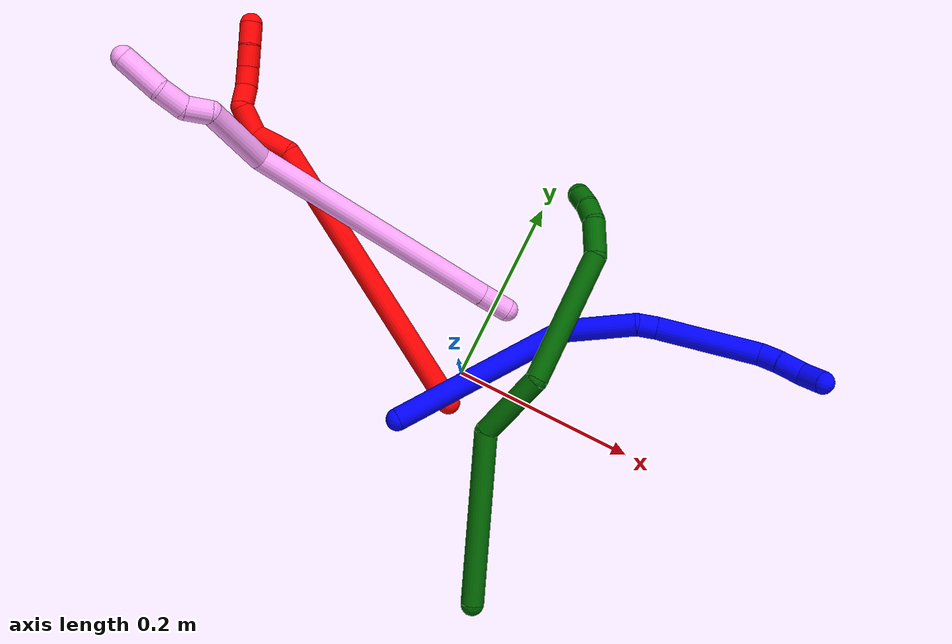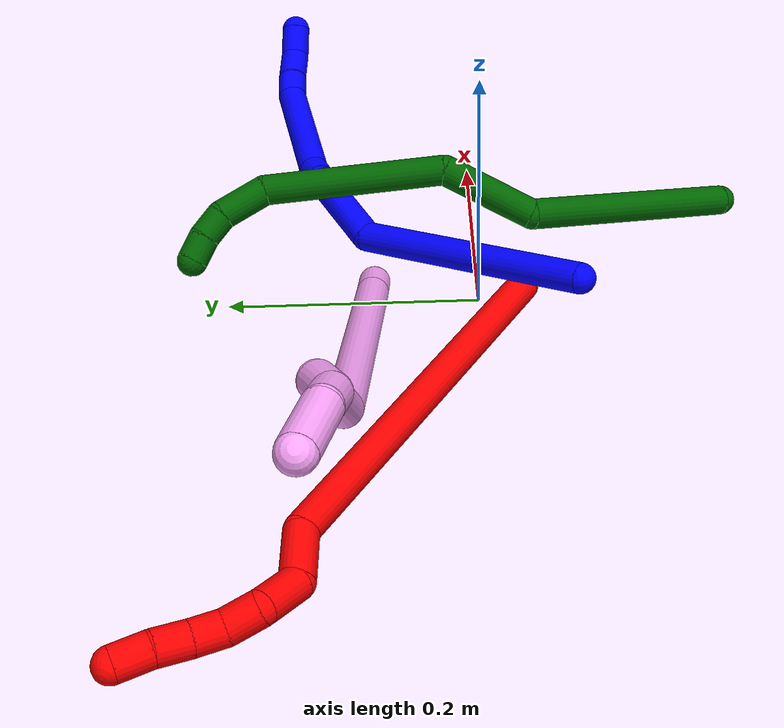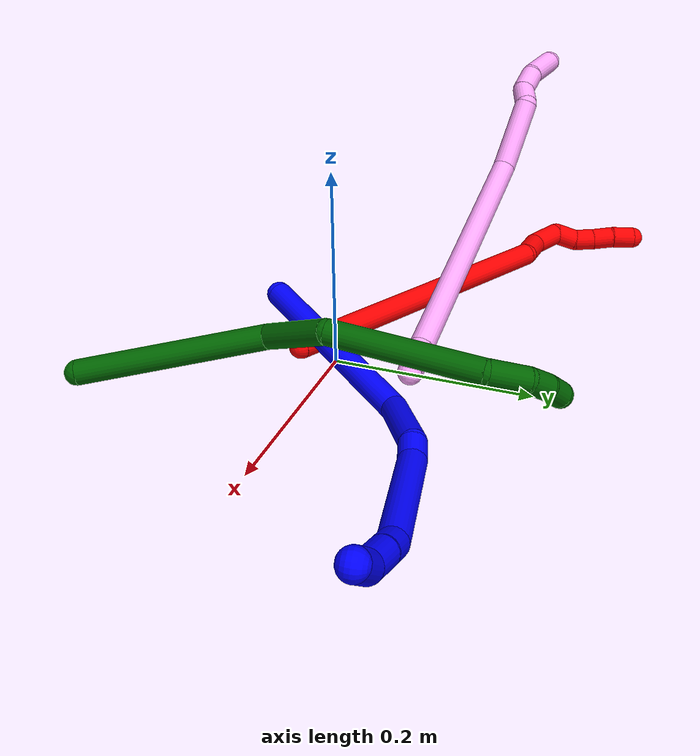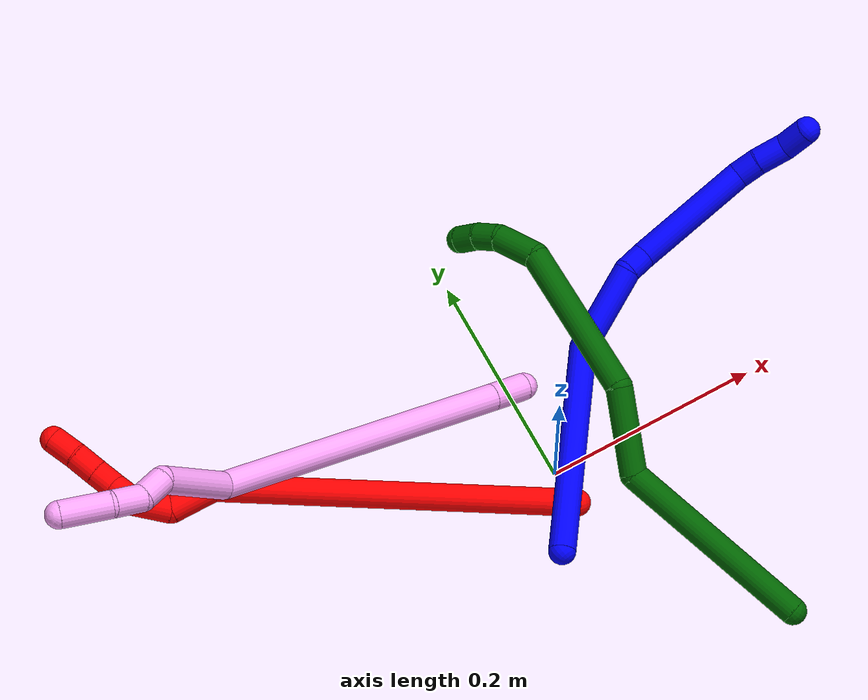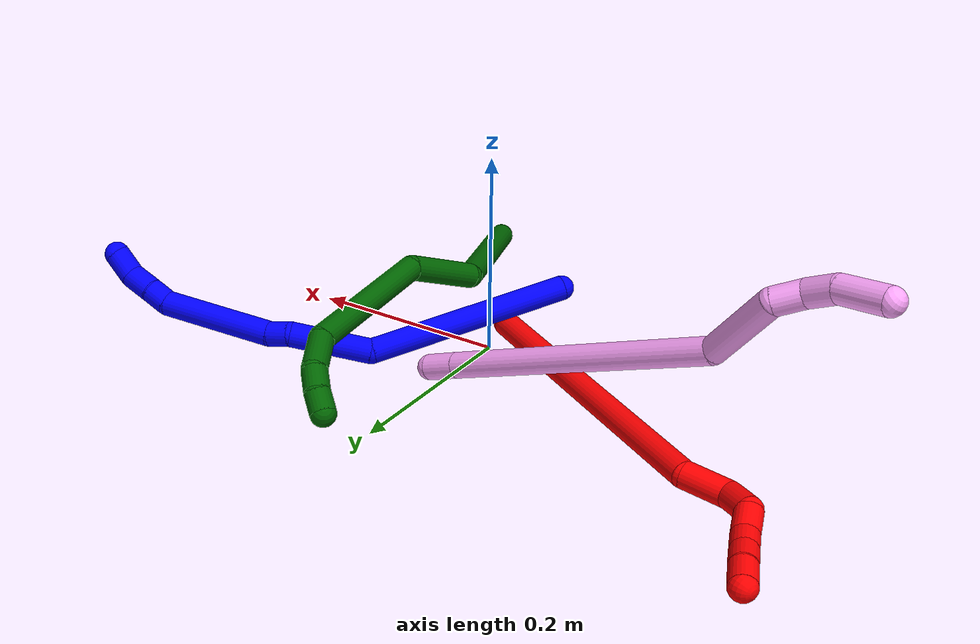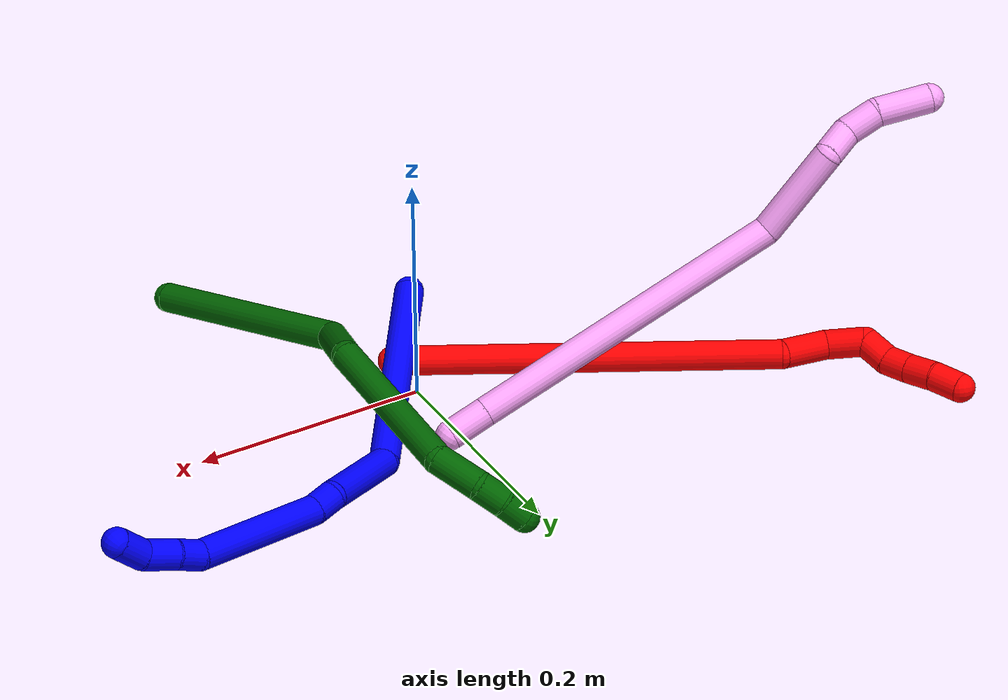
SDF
<sdf version="1.7">
 <world name="default">
  <model name="photoneo_s_sensor">
   <static>1</static>
   <pose>0 0 2 1.57079 1.57079 3.14159</pose>
   <link name="link">
    <inertial><mass>0.1</mass></inertial>
    <sensor name="sensor" type="depth">
     <update_rate>30</update_rate>
     <camera>
      <horizontal_fov>1.22</horizontal_fov>
      <image><width>1920</width><height>1200</height><format>B8G8R8</format></image>
      <clip><near>0.1</near><far>4</far></clip>
      <depth_camera><output>points</output></depth_camera>
     </camera>
     <plugin name="camera_plugin" filename="libgazebo_ros_depth_camera.so">
      <baseline>0.2</baseline>
      <alwaysOn>1</alwaysOn>
      <updateRate>0.0</updateRate>
      <cameraName>camera_ir</cameraName>
      <imageTopicName>/camera/color/image_raw</imageTopicName>
      <cameraInfoTopicName>/camera/color/camera_info</cameraInfoTopicName>
      <depthImageTopicName>/camera/depth/image_raw</depthImageTopicName>
      <depthImageCameraInfoTopicName>/camera/depth/camera_info</depthImageCameraInfoTopicName>
      <pointCloudTopicName>/camera/depth/points</pointCloudTopicName>
      <frameName>fr_optical</frameName>
      <pointCloudCutoff>0.1</pointCloudCutoff>
      <pointCloudCutoffMax>2.0</pointCloudCutoffMax>
      <distortionK1>0</distortionK1>
      <distortionK2>0</distortionK2>
      <distortionK3>0</distortionK3>
      <distortionT1>0</distortionT1>
      <distortionT2>0</distortionT2>
      <CxPrime>0</CxPrime>
      <Cx>0</Cx>
      <Cy>0</Cy>
      <focalLength>0</focalLength>
      <hackBaseline>0</hackBaseline>
     </plugin>
    </sensor>
   </link>
  </model>
  <model name="bin">
   <static>1</static>
   <link name="bottom">
    <collision name="collision-bottom">
     <pose>0 0 -0.01 0 -0 0</pose>
     <geometry><box><size>0.8 0.6 0.02</size></box></geometry>
     <surface>
      <friction><ode><mu>100</mu><mu2>100</mu2></ode></friction>
      <contact><collide_bitmask>65535</collide_bitmask></contact>
     </surface>
    </collision>
   </link>
   <link name="west_wall">
    <collision name="collision-west_wall">
     <pose>-0.41 0 0.1 0 -0 0</pose>
     <geometry><box><size>0.02 0.6 0.2</size></box></geometry>
     <surface>
      <friction><ode><mu>100</mu><mu2>100</mu2></ode></friction>
      <contact><collide_bitmask>65535</collide_bitmask></contact>
     </surface>
    </collision>
   </link>
   <link name="east_wall">
    <collision name="collision-east_wall">
     <pose>0.41 0 0.1 0 -0 0</pose>
     <geometry><box><size>0.02 0.6 0.2</size></box></geometry>
     <surface>
      <friction><ode><mu>100</mu><mu2>100</mu2></ode></friction>
      <contact><collide_bitmask>65535</collide_bitmask></contact>
     </surface>
    </collision>
   </link>
   <link name="south_wall">
    <collision name="collision-south_wall">
     <pose>0 -0.31 0.1 0 -0 0</pose>
     <geometry><box><size>0.8 0.02 0.2</size></box></geometry>
     <surface>
      <friction><ode><mu>100</mu><mu2>100</mu2></ode></friction>
      <contact><collide_bitmask>65535</collide_bitmask></contact>
     </surface>
    </collision>
   </link>
   <link name="north_wall">
    <collision name="collision-north_wall">
     <pose>0 0.31 0.1 0 -0 0</pose>
     <geometry><box><size>0.8 0.02 0.2</size></box></geometry>
     <surface>
      <friction><ode><mu>100</mu><mu2>100</mu2></ode></friction>
      <contact><collide_bitmask>65535</collide_bitmask></contact>
     </surface>
    </collision>
   </link>
  </model>
  <model name="1">
   <static>0</static>
   <link name="1">
    <collision name="collision-cylinder-e_1_1_4">
     <pose>0.038962 0.059178 0.074381 -0.672057 0.389018 -0.137397</pose>
     <geometry><cylinder><radius>0.0125</radius><length>0.205451</length></cylinder></geometry>
     <surface>
      <friction><ode><mu>1.16</mu><mu2>1.16</mu2><slip1>0</slip1><slip2>0</slip2></ode></friction>
      <contact><ode><kp>1e+06</kp><kd>1</kd><max_vel>0</max_vel><min_depth>0.001</min_depth></ode></contact>
     </surface>
    </collision>
    <visual name="visual-cylinder-e_1_1_4">
     <pose>0.038962 0.059178 0.074381 -0.672057 0.389018 -0.137397</pose>
     <geometry><cylinder><radius>0.0125</radius><length>0.205451</length></cylinder></geometry>
     <material><ambient>0 0 1 1</ambient></material>
    </visual>
    <collision name="collision-cylinder-e_2_4_5">
     <pose>0.109553 0.138882 0.162872 -0.968546 0.903713 -0.499956</pose>
     <geometry><cylinder><radius>0.0125</radius><length>0.080519</length></cylinder></geometry>
     <surface>
      <friction><ode><mu>1.16</mu><mu2>1.16</mu2><slip1>0</slip1><slip2>0</slip2></ode></friction>
      <contact><ode><kp>1e+06</kp><kd>1</kd><max_vel>0</max_vel><min_depth>0.001</min_depth></ode></contact>
     </surface>
    </collision>
    <visual name="visual-cylinder-e_2_4_5">
     <pose>0.109553 0.138882 0.162872 -0.968546 0.903713 -0.499956</pose>
     <geometry><cylinder><radius>0.0125</radius><length>0.080519</length></cylinder></geometry>
     <material><ambient>0 0 1 1</ambient></material>
    </visual>
    <collision name="collision-cylinder-e_3_5_6">
     <pose>0.147479 0.168151 0.178678 -1.3793 0.615481 -0.512738</pose>
     <geometry><cylinder><radius>0.0125</radius><length>0.021815</length></cylinder></geometry>
     <surface>
      <friction><ode><mu>1.16</mu><mu2>1.16</mu2><slip1>0</slip1><slip2>0</slip2></ode></friction>
      <contact><ode><kp>1e+06</kp><kd>1</kd><max_vel>0</max_vel><min_depth>0.001</min_depth></ode></contact>
     </surface>
    </collision>
    <visual name="visual-cylinder-e_3_5_6">
     <pose>0.147479 0.168151 0.178678 -1.3793 0.615481 -0.512738</pose>
     <geometry><cylinder><radius>0.0125</radius><length>0.021815</length></cylinder></geometry>
     <material><ambient>0 0 1 1</ambient></material>
    </visual>
    <collision name="collision-cylinder-e_4_6_7">
     <pose>0.197058 0.214206 0.182724 -1.50786 0.858362 -0.811685</pose>
     <geometry><cylinder><radius>0.0125</radius><length>0.114384</length></cylinder></geometry>
     <surface>
      <friction><ode><mu>1.16</mu><mu2>1.16</mu2><slip1>0</slip1><slip2>0</slip2></ode></friction>
      <contact><ode><kp>1e+06</kp><kd>1</kd><max_vel>0</max_vel><min_depth>0.001</min_depth></ode></contact>
     </surface>
    </collision>
    <visual name="visual-cylinder-e_4_6_7">
     <pose>0.197058 0.214206 0.182724 -1.50786 0.858362 -0.811685</pose>
     <geometry><cylinder><radius>0.0125</radius><length>0.114384</length></cylinder></geometry>
     <material><ambient>0 0 1 1</ambient></material>
    </visual>
    <collision name="collision-cylinder-e_5_7_8">
     <pose>0.250347 0.256003 0.183392 -1.92976 1.12424 -1.47569</pose>
     <geometry><cylinder><radius>0.0125</radius><length>0.022191</length></cylinder></geometry>
     <surface>
      <friction><ode><mu>1.16</mu><mu2>1.16</mu2><slip1>0</slip1><slip2>0</slip2></ode></friction>
      <contact><ode><kp>1e+06</kp><kd>1</kd><max_vel>0</max_vel><min_depth>0.001</min_depth></ode></contact>
     </surface>
    </collision>
    <visual name="visual-cylinder-e_5_7_8">
     <pose>0.250347 0.256003 0.183392 -1.92976 1.12424 -1.47569</pose>
     <geometry><cylinder><radius>0.0125</radius><length>0.022191</length></cylinder></geometry>
     <material><ambient>0 0 1 1</ambient></material>
    </visual>
    <collision name="collision-cylinder-e_6_8_9">
     <pose>0.272377 0.267362 0.178492 -2.00856 1.00777 -1.42837</pose>
     <geometry><cylinder><radius>0.0125</radius><length>0.028435</length></cylinder></geometry>
     <surface>
      <friction><ode><mu>1.16</mu><mu2>1.16</mu2><slip1>0</slip1><slip2>0</slip2></ode></friction>
      <contact><ode><kp>1e+06</kp><kd>1</kd><max_vel>0</max_vel><min_depth>0.001</min_depth></ode></contact>
     </surface>
    </collision>
    <visual name="visual-cylinder-e_6_8_9">
     <pose>0.272377 0.267362 0.178492 -2.00856 1.00777 -1.42837</pose>
     <geometry><cylinder><radius>0.0125</radius><length>0.028435</length></cylinder></geometry>
     <material><ambient>0 0 1 1</ambient></material>
    </visual>
    <collision name="collision-cylinder-e_7_9_2">
     <pose>0.297696 0.275284 0.172603 -2.7674 1.35818 -2.68084</pose>
     <geometry><cylinder><radius>0.0125</radius><length>0.027205</length></cylinder></geometry>
     <surface>
      <friction><ode><mu>1.16</mu><mu2>1.16</mu2><slip1>0</slip1><slip2>0</slip2></ode></friction>
      <contact><ode><kp>1e+06</kp><kd>1</kd><max_vel>0</max_vel><min_depth>0.001</min_depth></ode></contact>
     </surface>
    </collision>
    <visual name="visual-cylinder-e_7_9_2">
     <pose>0.297696 0.275284 0.172603 -2.7674 1.35818 -2.68084</pose>
     <geometry><cylinder><radius>0.0125</radius><length>0.027205</length></cylinder></geometry>
     <material><ambient>0 0 1 1</ambient></material>
    </visual>
    <collision name="collision-sphere-2">
     <pose>0.310992 0.276334 0.169932 0 -0 0</pose>
     <geometry><sphere><radius>0.0125</radius></sphere></geometry>
     <surface>
      <friction><ode><mu>1.16</mu><mu2>1.16</mu2><slip1>0</slip1><slip2>0</slip2></ode></friction>
      <contact><ode><kp>1e+06</kp><kd>1</kd><max_vel>0</max_vel><min_depth>0.001</min_depth></ode></contact>
     </surface>
    </collision>
    <visual name="visual-sphere-2">
     <pose>0.310992 0.276334 0.169932 0 -0 0</pose>
     <geometry><sphere><radius>0.0125</radius></sphere></geometry>
     <material><ambient>0 0 1 1</ambient></material>
    </visual>
    <collision name="collision-sphere-9">
     <pose>0.2844 0.274235 0.175275 0 -0 0</pose>
     <geometry><sphere><radius>0.0125</radius></sphere></geometry>
     <surface>
      <friction><ode><mu>1.16</mu><mu2>1.16</mu2><slip1>0</slip1><slip2>0</slip2></ode></friction>
      <contact><ode><kp>1e+06</kp><kd>1</kd><max_vel>0</max_vel><min_depth>0.001</min_depth></ode></contact>
     </surface>
    </collision>
    <visual name="visual-sphere-9">
     <pose>0.2844 0.274235 0.175275 0 -0 0</pose>
     <geometry><sphere><radius>0.0125</radius></sphere></geometry>
     <material><ambient>0 0 1 1</ambient></material>
    </visual>
    <collision name="collision-sphere-4">
     <pose>0.077923 0.118356 0.148761 0 -0 0</pose>
     <geometry><sphere><radius>0.0125</radius></sphere></geometry>
     <surface>
      <friction><ode><mu>1.16</mu><mu2>1.16</mu2><slip1>0</slip1><slip2>0</slip2></ode></friction>
      <contact><ode><kp>1e+06</kp><kd>1</kd><max_vel>0</max_vel><min_depth>0.001</min_depth></ode></contact>
     </surface>
    </collision>
    <visual name="visual-sphere-4">
     <pose>0.077923 0.118356 0.148761 0 -0 0</pose>
     <geometry><sphere><radius>0.0125</radius></sphere></geometry>
     <material><ambient>0 0 1 1</ambient></material>
    </visual>
    <collision name="collision-sphere-1">
     <geometry><sphere><radius>0.0125</radius></sphere></geometry>
     <surface>
      <friction><ode><mu>1.16</mu><mu2>1.16</mu2><slip1>0</slip1><slip2>0</slip2></ode></friction>
      <contact><ode><kp>1e+06</kp><kd>1</kd><max_vel>0</max_vel><min_depth>0.001</min_depth></ode></contact>
     </surface>
    </collision>
    <visual name="visual-sphere-1">
     <geometry><sphere><radius>0.0125</radius></sphere></geometry>
     <material><ambient>0 0 1 1</ambient></material>
    </visual>
    <collision name="collision-sphere-8">
     <pose>0.260355 0.260489 0.181709 0 -0 0</pose>
     <geometry><sphere><radius>0.0125</radius></sphere></geometry>
     <surface>
      <friction><ode><mu>1.16</mu><mu2>1.16</mu2><slip1>0</slip1><slip2>0</slip2></ode></friction>
      <contact><ode><kp>1e+06</kp><kd>1</kd><max_vel>0</max_vel><min_depth>0.001</min_depth></ode></contact>
     </surface>
    </collision>
    <visual name="visual-sphere-8">
     <pose>0.260355 0.260489 0.181709 0 -0 0</pose>
     <geometry><sphere><radius>0.0125</radius></sphere></geometry>
     <material><ambient>0 0 1 1</ambient></material>
    </visual>
    <collision name="collision-sphere-5">
     <pose>0.141182 0.159408 0.176983 0 -0 0</pose>
     <geometry><sphere><radius>0.0125</radius></sphere></geometry>
     <surface>
      <friction><ode><mu>1.16</mu><mu2>1.16</mu2><slip1>0</slip1><slip2>0</slip2></ode></friction>
      <contact><ode><kp>1e+06</kp><kd>1</kd><max_vel>0</max_vel><min_depth>0.001</min_depth></ode></contact>
     </surface>
    </collision>
    <visual name="visual-sphere-5">
     <pose>0.141182 0.159408 0.176983 0 -0 0</pose>
     <geometry><sphere><radius>0.0125</radius></sphere></geometry>
     <material><ambient>0 0 1 1</ambient></material>
    </visual>
    <collision name="collision-sphere-6">
     <pose>0.153777 0.176895 0.180373 0 -0 0</pose>
     <geometry><sphere><radius>0.0125</radius></sphere></geometry>
     <surface>
      <friction><ode><mu>1.16</mu><mu2>1.16</mu2><slip1>0</slip1><slip2>0</slip2></ode></friction>
      <contact><ode><kp>1e+06</kp><kd>1</kd><max_vel>0</max_vel><min_depth>0.001</min_depth></ode></contact>
     </surface>
    </collision>
    <visual name="visual-sphere-6">
     <pose>0.153777 0.176895 0.180373 0 -0 0</pose>
     <geometry><sphere><radius>0.0125</radius></sphere></geometry>
     <material><ambient>0 0 1 1</ambient></material>
    </visual>
    <collision name="collision-sphere-7">
     <pose>0.240339 0.251517 0.185076 0 -0 0</pose>
     <geometry><sphere><radius>0.0125</radius></sphere></geometry>
     <surface>
      <friction><ode><mu>1.16</mu><mu2>1.16</mu2><slip1>0</slip1><slip2>0</slip2></ode></friction>
      <contact><ode><kp>1e+06</kp><kd>1</kd><max_vel>0</max_vel><min_depth>0.001</min_depth></ode></contact>
     </surface>
    </collision>
    <visual name="visual-sphere-7">
     <pose>0.240339 0.251517 0.185076 0 -0 0</pose>
     <geometry><sphere><radius>0.0125</radius></sphere></geometry>
     <material><ambient>0 0 1 1</ambient></material>
    </visual>
    <inertial>
     <pose>0.127965 0.144566 0.13407 0 -0 0</pose>
     <mass>0.5</mass>
     <inertia>
      <ixx>0.000607</ixx>
      <ixy>0</ixy>
      <ixz>0</ixz>
      <iyy>0.000562</iyy>
      <iyz>0</iyz>
      <izz>-0.000939</izz>
     </inertia>
    </inertial>
   </link>
   <pose>-0.0364 -0.077038 0.04496 -1.66129 -0.817332 0.21813</pose>
  </model>
  <model name="2">
   <static>0</static>
   <link name="2">
    <collision name="collision-cylinder-e_1_1_4">
     <pose>-0.022821 0.021688 0.159924 -0.134793 -0.140474 0.009497</pose>
     <geometry><cylinder><radius>0.0125</radius><length>0.325986</length></cylinder></geometry>
     <surface>
      <friction><ode><mu>1.16</mu><mu2>1.16</mu2><slip1>0</slip1><slip2>0</slip2></ode></friction>
      <contact><ode><kp>1e+06</kp><kd>1</kd><max_vel>0</max_vel><min_depth>0.001</min_depth></ode></contact>
     </surface>
    </collision>
    <visual name="visual-cylinder-e_1_1_4">
     <pose>-0.022821 0.021688 0.159924 -0.134793 -0.140474 0.009497</pose>
     <geometry><cylinder><radius>0.0125</radius><length>0.325986</length></cylinder></geometry>
     <material><ambient>1 0 0 1</ambient></material>
    </visual>
    <collision name="collision-cylinder-e_2_4_5">
     <pose>-0.042325 0.037241 0.340003 0.295457 0.156167 0.023286</pose>
     <geometry><cylinder><radius>0.0125</radius><length>0.042657</length></cylinder></geometry>
     <surface>
      <friction><ode><mu>1.16</mu><mu2>1.16</mu2><slip1>0</slip1><slip2>0</slip2></ode></friction>
      <contact><ode><kp>1e+06</kp><kd>1</kd><max_vel>0</max_vel><min_depth>0.001</min_depth></ode></contact>
     </surface>
    </collision>
    <visual name="visual-cylinder-e_2_4_5">
     <pose>-0.042325 0.037241 0.340003 0.295457 0.156167 0.023286</pose>
     <geometry><cylinder><radius>0.0125</radius><length>0.042657</length></cylinder></geometry>
     <material><ambient>1 0 0 1</ambient></material>
    </visual>
    <collision name="collision-cylinder-e_3_5_6">
     <pose>-0.041144 0.0367 0.376159 -0.336333 -0.125382 0.021313</pose>
     <geometry><cylinder><radius>0.0125</radius><length>0.034168</length></cylinder></geometry>
     <surface>
      <friction><ode><mu>1.16</mu><mu2>1.16</mu2><slip1>0</slip1><slip2>0</slip2></ode></friction>
      <contact><ode><kp>1e+06</kp><kd>1</kd><max_vel>0</max_vel><min_depth>0.001</min_depth></ode></contact>
     </surface>
    </collision>
    <visual name="visual-cylinder-e_3_5_6">
     <pose>-0.041144 0.0367 0.376159 -0.336333 -0.125382 0.021313</pose>
     <geometry><cylinder><radius>0.0125</radius><length>0.034168</length></cylinder></geometry>
     <material><ambient>1 0 0 1</ambient></material>
    </visual>
    <collision name="collision-cylinder-e_4_6_7">
     <pose>-0.053106 0.045101 0.399405 -0.369561 -0.901663 0.18047</pose>
     <geometry><cylinder><radius>0.0125</radius><length>0.025054</length></cylinder></geometry>
     <surface>
      <friction><ode><mu>1.16</mu><mu2>1.16</mu2><slip1>0</slip1><slip2>0</slip2></ode></friction>
      <contact><ode><kp>1e+06</kp><kd>1</kd><max_vel>0</max_vel><min_depth>0.001</min_depth></ode></contact>
     </surface>
    </collision>
    <visual name="visual-cylinder-e_4_6_7">
     <pose>-0.053106 0.045101 0.399405 -0.369561 -0.901663 0.18047</pose>
     <geometry><cylinder><radius>0.0125</radius><length>0.025054</length></cylinder></geometry>
     <material><ambient>1 0 0 1</ambient></material>
    </visual>
    <collision name="collision-cylinder-e_5_7_8">
     <pose>-0.069153 0.053515 0.414184 -0.63983 -0.58514 0.198923</pose>
     <geometry><cylinder><radius>0.0125</radius><length>0.02253</length></cylinder></geometry>
     <surface>
      <friction><ode><mu>1.16</mu><mu2>1.16</mu2><slip1>0</slip1><slip2>0</slip2></ode></friction>
      <contact><ode><kp>1e+06</kp><kd>1</kd><max_vel>0</max_vel><min_depth>0.001</min_depth></ode></contact>
     </surface>
    </collision>
    <visual name="visual-cylinder-e_5_7_8">
     <pose>-0.069153 0.053515 0.414184 -0.63983 -0.58514 0.198923</pose>
     <geometry><cylinder><radius>0.0125</radius><length>0.02253</length></cylinder></geometry>
     <material><ambient>1 0 0 1</ambient></material>
    </visual>
    <collision name="collision-cylinder-e_6_8_9">
     <pose>-0.081408 0.065794 0.429798 -0.690268 -0.522332 0.191592</pose>
     <geometry><cylinder><radius>0.0125</radius><length>0.024183</length></cylinder></geometry>
     <surface>
      <friction><ode><mu>1.16</mu><mu2>1.16</mu2><slip1>0</slip1><slip2>0</slip2></ode></friction>
      <contact><ode><kp>1e+06</kp><kd>1</kd><max_vel>0</max_vel><min_depth>0.001</min_depth></ode></contact>
     </surface>
    </collision>
    <visual name="visual-cylinder-e_6_8_9">
     <pose>-0.081408 0.065794 0.429798 -0.690268 -0.522332 0.191592</pose>
     <geometry><cylinder><radius>0.0125</radius><length>0.024183</length></cylinder></geometry>
     <material><ambient>1 0 0 1</ambient></material>
    </visual>
    <collision name="collision-cylinder-e_7_9_2">
     <pose>-0.094875 0.077933 0.44662 -0.558814 -0.624763 0.184792</pose>
     <geometry><cylinder><radius>0.0125</radius><length>0.025423</length></cylinder></geometry>
     <surface>
      <friction><ode><mu>1.16</mu><mu2>1.16</mu2><slip1>0</slip1><slip2>0</slip2></ode></friction>
      <contact><ode><kp>1e+06</kp><kd>1</kd><max_vel>0</max_vel><min_depth>0.001</min_depth></ode></contact>
     </surface>
    </collision>
    <visual name="visual-cylinder-e_7_9_2">
     <pose>-0.094875 0.077933 0.44662 -0.558814 -0.624763 0.184792</pose>
     <geometry><cylinder><radius>0.0125</radius><length>0.025423</length></cylinder></geometry>
     <material><ambient>1 0 0 1</ambient></material>
    </visual>
    <collision name="collision-sphere-2">
     <pose>-0.10231 0.083399 0.455362 0 -0 0</pose>
     <geometry><sphere><radius>0.0125</radius></sphere></geometry>
     <surface>
      <friction><ode><mu>1.16</mu><mu2>1.16</mu2><slip1>0</slip1><slip2>0</slip2></ode></friction>
      <contact><ode><kp>1e+06</kp><kd>1</kd><max_vel>0</max_vel><min_depth>0.001</min_depth></ode></contact>
     </surface>
    </collision>
    <visual name="visual-sphere-2">
     <pose>-0.10231 0.083399 0.455362 0 -0 0</pose>
     <geometry><sphere><radius>0.0125</radius></sphere></geometry>
     <material><ambient>1 0 0 1</ambient></material>
    </visual>
    <collision name="collision-sphere-9">
     <pose>-0.08744 0.072467 0.437878 0 -0 0</pose>
     <geometry><sphere><radius>0.0125</radius></sphere></geometry>
     <surface>
      <friction><ode><mu>1.16</mu><mu2>1.16</mu2><slip1>0</slip1><slip2>0</slip2></ode></friction>
      <contact><ode><kp>1e+06</kp><kd>1</kd><max_vel>0</max_vel><min_depth>0.001</min_depth></ode></contact>
     </surface>
    </collision>
    <visual name="visual-sphere-9">
     <pose>-0.08744 0.072467 0.437878 0 -0 0</pose>
     <geometry><sphere><radius>0.0125</radius></sphere></geometry>
     <material><ambient>1 0 0 1</ambient></material>
    </visual>
    <collision name="collision-sphere-4">
     <pose>-0.045642 0.043376 0.319847 0 -0 0</pose>
     <geometry><sphere><radius>0.0125</radius></sphere></geometry>
     <surface>
      <friction><ode><mu>1.16</mu><mu2>1.16</mu2><slip1>0</slip1><slip2>0</slip2></ode></friction>
      <contact><ode><kp>1e+06</kp><kd>1</kd><max_vel>0</max_vel><min_depth>0.001</min_depth></ode></contact>
     </surface>
    </collision>
    <visual name="visual-sphere-4">
     <pose>-0.045642 0.043376 0.319847 0 -0 0</pose>
     <geometry><sphere><radius>0.0125</radius></sphere></geometry>
     <material><ambient>1 0 0 1</ambient></material>
    </visual>
    <collision name="collision-sphere-1">
     <geometry><sphere><radius>0.0125</radius></sphere></geometry>
     <surface>
      <friction><ode><mu>1.16</mu><mu2>1.16</mu2><slip1>0</slip1><slip2>0</slip2></ode></friction>
      <contact><ode><kp>1e+06</kp><kd>1</kd><max_vel>0</max_vel><min_depth>0.001</min_depth></ode></contact>
     </surface>
    </collision>
    <visual name="visual-sphere-1">
     <geometry><sphere><radius>0.0125</radius></sphere></geometry>
     <material><ambient>1 0 0 1</ambient></material>
    </visual>
    <collision name="collision-sphere-8">
     <pose>-0.075375 0.059121 0.421718 0 -0 0</pose>
     <geometry><sphere><radius>0.0125</radius></sphere></geometry>
     <surface>
      <friction><ode><mu>1.16</mu><mu2>1.16</mu2><slip1>0</slip1><slip2>0</slip2></ode></friction>
      <contact><ode><kp>1e+06</kp><kd>1</kd><max_vel>0</max_vel><min_depth>0.001</min_depth></ode></contact>
     </surface>
    </collision>
    <visual name="visual-sphere-8">
     <pose>-0.075375 0.059121 0.421718 0 -0 0</pose>
     <geometry><sphere><radius>0.0125</radius></sphere></geometry>
     <material><ambient>1 0 0 1</ambient></material>
    </visual>
    <collision name="collision-sphere-5">
     <pose>-0.039008 0.031106 0.360159 0 -0 0</pose>
     <geometry><sphere><radius>0.0125</radius></sphere></geometry>
     <surface>
      <friction><ode><mu>1.16</mu><mu2>1.16</mu2><slip1>0</slip1><slip2>0</slip2></ode></friction>
      <contact><ode><kp>1e+06</kp><kd>1</kd><max_vel>0</max_vel><min_depth>0.001</min_depth></ode></contact>
     </surface>
    </collision>
    <visual name="visual-sphere-5">
     <pose>-0.039008 0.031106 0.360159 0 -0 0</pose>
     <geometry><sphere><radius>0.0125</radius></sphere></geometry>
     <material><ambient>1 0 0 1</ambient></material>
    </visual>
    <collision name="collision-sphere-6">
     <pose>-0.04328 0.042294 0.392159 0 -0 0</pose>
     <geometry><sphere><radius>0.0125</radius></sphere></geometry>
     <surface>
      <friction><ode><mu>1.16</mu><mu2>1.16</mu2><slip1>0</slip1><slip2>0</slip2></ode></friction>
      <contact><ode><kp>1e+06</kp><kd>1</kd><max_vel>0</max_vel><min_depth>0.001</min_depth></ode></contact>
     </surface>
    </collision>
    <visual name="visual-sphere-6">
     <pose>-0.04328 0.042294 0.392159 0 -0 0</pose>
     <geometry><sphere><radius>0.0125</radius></sphere></geometry>
     <material><ambient>1 0 0 1</ambient></material>
    </visual>
    <collision name="collision-sphere-7">
     <pose>-0.062932 0.047908 0.406651 0 -0 0</pose>
     <geometry><sphere><radius>0.0125</radius></sphere></geometry>
     <surface>
      <friction><ode><mu>1.16</mu><mu2>1.16</mu2><slip1>0</slip1><slip2>0</slip2></ode></friction>
      <contact><ode><kp>1e+06</kp><kd>1</kd><max_vel>0</max_vel><min_depth>0.001</min_depth></ode></contact>
     </surface>
    </collision>
    <visual name="visual-sphere-7">
     <pose>-0.062932 0.047908 0.406651 0 -0 0</pose>
     <geometry><sphere><radius>0.0125</radius></sphere></geometry>
     <material><ambient>1 0 0 1</ambient></material>
    </visual>
    <inertial>
     <pose>-0.035839 0.031641 0.24115 0 -0 0</pose>
     <mass>0.5</mass>
     <inertia>
      <ixx>0.002911</ixx>
      <ixy>0</ixy>
      <ixz>0</ixz>
      <iyy>0.002929</iyy>
      <iyz>0</iyz>
      <izz>5.7e-05</izz>
     </inertia>
    </inertial>
   </link>
   <pose>0.002777 -0.035945 0.011422 1.54952 -0.720383 -1.90018</pose>
  </model>
  <model name="4">
   <static>0</static>
   <link name="4">
    <collision name="collision-cylinder-e_1_1_4">
     <pose>-0.008568 0.00036 0.014692 -0.024529 -0.527837 0.006629</pose>
     <geometry><cylinder><radius>0.0125</radius><length>0.034024</length></cylinder></geometry>
     <surface>
      <friction><ode><mu>1.16</mu><mu2>1.16</mu2><slip1>0</slip1><slip2>0</slip2></ode></friction>
      <contact><ode><kp>1e+06</kp><kd>1</kd><max_vel>0</max_vel><min_depth>0.001</min_depth></ode></contact>
     </surface>
    </collision>
    <visual name="visual-cylinder-e_1_1_4">
     <pose>-0.008568 0.00036 0.014692 -0.024529 -0.527837 0.006629</pose>
     <geometry><cylinder><radius>0.0125</radius><length>0.034024</length></cylinder></geometry>
     <material><ambient>1 0.65098 0.996078 1</ambient></material>
    </visual>
    <collision name="collision-cylinder-e_2_4_5">
     <pose>-0.088151 0.005764 0.150206 -0.041715 -0.530992 0.011344</pose>
     <geometry><cylinder><radius>0.0125</radius><length>0.280474</length></cylinder></geometry>
     <surface>
      <friction><ode><mu>1.16</mu><mu2>1.16</mu2><slip1>0</slip1><slip2>0</slip2></ode></friction>
      <contact><ode><kp>1e+06</kp><kd>1</kd><max_vel>0</max_vel><min_depth>0.001</min_depth></ode></contact>
     </surface>
    </collision>
    <visual name="visual-cylinder-e_2_4_5">
     <pose>-0.088151 0.005764 0.150206 -0.041715 -0.530992 0.011344</pose>
     <geometry><cylinder><radius>0.0125</radius><length>0.280474</length></cylinder></geometry>
     <material><ambient>1 0.65098 0.996078 1</ambient></material>
    </visual>
    <collision name="collision-cylinder-e_3_5_6">
     <pose>-0.159151 0.016631 0.311623 -0.142486 0.000363 -2.6e-05</pose>
     <geometry><cylinder><radius>0.0125</radius><length>0.082021</length></cylinder></geometry>
     <surface>
      <friction><ode><mu>1.16</mu><mu2>1.16</mu2><slip1>0</slip1><slip2>0</slip2></ode></friction>
      <contact><ode><kp>1e+06</kp><kd>1</kd><max_vel>0</max_vel><min_depth>0.001</min_depth></ode></contact>
     </surface>
    </collision>
    <visual name="visual-cylinder-e_3_5_6">
     <pose>-0.159151 0.016631 0.311623 -0.142486 0.000363 -2.6e-05</pose>
     <geometry><cylinder><radius>0.0125</radius><length>0.082021</length></cylinder></geometry>
     <material><ambient>1 0.65098 0.996078 1</ambient></material>
    </visual>
    <collision name="collision-cylinder-e_4_6_7">
     <pose>-0.165083 0.017776 0.36362 0.389384 -0.449622 -0.090124</pose>
     <geometry><cylinder><radius>0.0125</radius><length>0.02737</length></cylinder></geometry>
     <surface>
      <friction><ode><mu>1.16</mu><mu2>1.16</mu2><slip1>0</slip1><slip2>0</slip2></ode></friction>
      <contact><ode><kp>1e+06</kp><kd>1</kd><max_vel>0</max_vel><min_depth>0.001</min_depth></ode></contact>
     </surface>
    </collision>
    <visual name="visual-cylinder-e_4_6_7">
     <pose>-0.165083 0.017776 0.36362 0.389384 -0.449622 -0.090124</pose>
     <geometry><cylinder><radius>0.0125</radius><length>0.02737</length></cylinder></geometry>
     <material><ambient>1 0.65098 0.996078 1</ambient></material>
    </visual>
    <collision name="collision-cylinder-e_5_7_8">
     <pose>-0.177459 0.014798 0.388255 -0.127858 -0.448968 0.029232</pose>
     <geometry><cylinder><radius>0.0125</radius><length>0.029619</length></cylinder></geometry>
     <surface>
      <friction><ode><mu>1.16</mu><mu2>1.16</mu2><slip1>0</slip1><slip2>0</slip2></ode></friction>
      <contact><ode><kp>1e+06</kp><kd>1</kd><max_vel>0</max_vel><min_depth>0.001</min_depth></ode></contact>
     </surface>
    </collision>
    <visual name="visual-cylinder-e_5_7_8">
     <pose>-0.177459 0.014798 0.388255 -0.127858 -0.448968 0.029232</pose>
     <geometry><cylinder><radius>0.0125</radius><length>0.029619</length></cylinder></geometry>
     <material><ambient>1 0.65098 0.996078 1</ambient></material>
    </visual>
    <collision name="collision-cylinder-e_6_8_2">
     <pose>-0.199479 0.021873 0.41787 -0.316937 -0.735216 0.122934</pose>
     <geometry><cylinder><radius>0.0125</radius><length>0.046493</length></cylinder></geometry>
     <surface>
      <friction><ode><mu>1.16</mu><mu2>1.16</mu2><slip1>0</slip1><slip2>0</slip2></ode></friction>
      <contact><ode><kp>1e+06</kp><kd>1</kd><max_vel>0</max_vel><min_depth>0.001</min_depth></ode></contact>
     </surface>
    </collision>
    <visual name="visual-cylinder-e_6_8_2">
     <pose>-0.199479 0.021873 0.41787 -0.316937 -0.735216 0.122934</pose>
     <geometry><cylinder><radius>0.0125</radius><length>0.046493</length></cylinder></geometry>
     <material><ambient>1 0.65098 0.996078 1</ambient></material>
    </visual>
    <collision name="collision-sphere-2">
     <pose>-0.215072 0.027246 0.434253 0 -0 0</pose>
     <geometry><sphere><radius>0.0125</radius></sphere></geometry>
     <surface>
      <friction><ode><mu>1.16</mu><mu2>1.16</mu2><slip1>0</slip1><slip2>0</slip2></ode></friction>
      <contact><ode><kp>1e+06</kp><kd>1</kd><max_vel>0</max_vel><min_depth>0.001</min_depth></ode></contact>
     </surface>
    </collision>
    <visual name="visual-sphere-2">
     <pose>-0.215072 0.027246 0.434253 0 -0 0</pose>
     <geometry><sphere><radius>0.0125</radius></sphere></geometry>
     <material><ambient>1 0.65098 0.996078 1</ambient></material>
    </visual>
    <collision name="collision-sphere-4">
     <pose>-0.017137 0.000721 0.029384 0 -0 0</pose>
     <geometry><sphere><radius>0.0125</radius></sphere></geometry>
     <surface>
      <friction><ode><mu>1.16</mu><mu2>1.16</mu2><slip1>0</slip1><slip2>0</slip2></ode></friction>
      <contact><ode><kp>1e+06</kp><kd>1</kd><max_vel>0</max_vel><min_depth>0.001</min_depth></ode></contact>
     </surface>
    </collision>
    <visual name="visual-sphere-4">
     <pose>-0.017137 0.000721 0.029384 0 -0 0</pose>
     <geometry><sphere><radius>0.0125</radius></sphere></geometry>
     <material><ambient>1 0.65098 0.996078 1</ambient></material>
    </visual>
    <collision name="collision-sphere-1">
     <geometry><sphere><radius>0.0125</radius></sphere></geometry>
     <surface>
      <friction><ode><mu>1.16</mu><mu2>1.16</mu2><slip1>0</slip1><slip2>0</slip2></ode></friction>
      <contact><ode><kp>1e+06</kp><kd>1</kd><max_vel>0</max_vel><min_depth>0.001</min_depth></ode></contact>
     </surface>
    </collision>
    <visual name="visual-sphere-1">
     <geometry><sphere><radius>0.0125</radius></sphere></geometry>
     <material><ambient>1 0.65098 0.996078 1</ambient></material>
    </visual>
    <collision name="collision-sphere-8">
     <pose>-0.183887 0.016499 0.401488 0 -0 0</pose>
     <geometry><sphere><radius>0.0125</radius></sphere></geometry>
     <surface>
      <friction><ode><mu>1.16</mu><mu2>1.16</mu2><slip1>0</slip1><slip2>0</slip2></ode></friction>
      <contact><ode><kp>1e+06</kp><kd>1</kd><max_vel>0</max_vel><min_depth>0.001</min_depth></ode></contact>
     </surface>
    </collision>
    <visual name="visual-sphere-8">
     <pose>-0.183887 0.016499 0.401488 0 -0 0</pose>
     <geometry><sphere><radius>0.0125</radius></sphere></geometry>
     <material><ambient>1 0.65098 0.996078 1</ambient></material>
    </visual>
    <collision name="collision-sphere-5">
     <pose>-0.159165 0.010807 0.271028 0 -0 0</pose>
     <geometry><sphere><radius>0.0125</radius></sphere></geometry>
     <surface>
      <friction><ode><mu>1.16</mu><mu2>1.16</mu2><slip1>0</slip1><slip2>0</slip2></ode></friction>
      <contact><ode><kp>1e+06</kp><kd>1</kd><max_vel>0</max_vel><min_depth>0.001</min_depth></ode></contact>
     </surface>
    </collision>
    <visual name="visual-sphere-5">
     <pose>-0.159165 0.010807 0.271028 0 -0 0</pose>
     <geometry><sphere><radius>0.0125</radius></sphere></geometry>
     <material><ambient>1 0.65098 0.996078 1</ambient></material>
    </visual>
    <collision name="collision-sphere-6">
     <pose>-0.159136 0.022454 0.352218 0 -0 0</pose>
     <geometry><sphere><radius>0.0125</radius></sphere></geometry>
     <surface>
      <friction><ode><mu>1.16</mu><mu2>1.16</mu2><slip1>0</slip1><slip2>0</slip2></ode></friction>
      <contact><ode><kp>1e+06</kp><kd>1</kd><max_vel>0</max_vel><min_depth>0.001</min_depth></ode></contact>
     </surface>
    </collision>
    <visual name="visual-sphere-6">
     <pose>-0.159136 0.022454 0.352218 0 -0 0</pose>
     <geometry><sphere><radius>0.0125</radius></sphere></geometry>
     <material><ambient>1 0.65098 0.996078 1</ambient></material>
    </visual>
    <collision name="collision-sphere-7">
     <pose>-0.171031 0.013097 0.375022 0 -0 0</pose>
     <geometry><sphere><radius>0.0125</radius></sphere></geometry>
     <surface>
      <friction><ode><mu>1.16</mu><mu2>1.16</mu2><slip1>0</slip1><slip2>0</slip2></ode></friction>
      <contact><ode><kp>1e+06</kp><kd>1</kd><max_vel>0</max_vel><min_depth>0.001</min_depth></ode></contact>
     </surface>
    </collision>
    <visual name="visual-sphere-7">
     <pose>-0.171031 0.013097 0.375022 0 -0 0</pose>
     <geometry><sphere><radius>0.0125</radius></sphere></geometry>
     <material><ambient>1 0.65098 0.996078 1</ambient></material>
    </visual>
    <inertial>
     <pose>-0.114236 0.009869 0.218136 0 -0 0</pose>
     <mass>0.5</mass>
     <inertia>
      <ixx>0.001663</ixx>
      <ixy>0</ixy>
      <ixz>0</ixz>
      <iyy>0.001938</iyy>
      <iyz>0</iyz>
      <izz>0.000907</izz>
     </inertia>
    </inertial>
   </link>
   <pose>0.014065 0.08294 0.011491 0.024745 -0.676809 -0.038686</pose>
  </model>
  <model name="6">
   <static>0</static>
   <link name="6">
    <collision name="collision-cylinder-e_1_1_4">
     <pose>-0.058134 0.039237 0.061543 -0.567572 -0.672603 0.203214</pose>
     <geometry><cylinder><radius>0.0125</radius><length>0.186619</length></cylinder></geometry>
     <surface>
      <friction><ode><mu>1.16</mu><mu2>1.16</mu2><slip1>0</slip1><slip2>0</slip2></ode></friction>
      <contact><ode><kp>1e+06</kp><kd>1</kd><max_vel>0</max_vel><min_depth>0.001</min_depth></ode></contact>
     </surface>
    </collision>
    <visual name="visual-cylinder-e_1_1_4">
     <pose>-0.058134 0.039237 0.061543 -0.567572 -0.672603 0.203214</pose>
     <geometry><cylinder><radius>0.0125</radius><length>0.186619</length></cylinder></geometry>
     <material><ambient>0 0.392157 0.003922 1</ambient></material>
    </visual>
    <collision name="collision-cylinder-e_2_4_5">
     <pose>-0.120249 0.112323 0.143911 -1.01928 -0.099848 0.055835</pose>
     <geometry><cylinder><radius>0.0125</radius><length>0.079882</length></cylinder></geometry>
     <surface>
      <friction><ode><mu>1.16</mu><mu2>1.16</mu2><slip1>0</slip1><slip2>0</slip2></ode></friction>
      <contact><ode><kp>1e+06</kp><kd>1</kd><max_vel>0</max_vel><min_depth>0.001</min_depth></ode></contact>
     </surface>
    </collision>
    <visual name="visual-cylinder-e_2_4_5">
     <pose>-0.120249 0.112323 0.143911 -1.01928 -0.099848 0.055835</pose>
     <geometry><cylinder><radius>0.0125</radius><length>0.079882</length></cylinder></geometry>
     <material><ambient>0 0.392157 0.003922 1</ambient></material>
    </visual>
    <collision name="collision-cylinder-e_3_5_6">
     <pose>-0.170109 0.199525 0.188051 -1.15879 -0.667351 0.446064</pose>
     <geometry><cylinder><radius>0.0125</radius><length>0.148255</length></cylinder></geometry>
     <surface>
      <friction><ode><mu>1.16</mu><mu2>1.16</mu2><slip1>0</slip1><slip2>0</slip2></ode></friction>
      <contact><ode><kp>1e+06</kp><kd>1</kd><max_vel>0</max_vel><min_depth>0.001</min_depth></ode></contact>
     </surface>
    </collision>
    <visual name="visual-cylinder-e_3_5_6">
     <pose>-0.170109 0.199525 0.188051 -1.15879 -0.667351 0.446064</pose>
     <geometry><cylinder><radius>0.0125</radius><length>0.148255</length></cylinder></geometry>
     <material><ambient>0 0.392157 0.003922 1</ambient></material>
    </visual>
    <collision name="collision-cylinder-e_4_6_7">
     <pose>-0.234362 0.259334 0.217119 -0.843053 -1.13092 0.554444</pose>
     <geometry><cylinder><radius>0.0125</radius><length>0.040617</length></cylinder></geometry>
     <surface>
      <friction><ode><mu>1.16</mu><mu2>1.16</mu2><slip1>0</slip1><slip2>0</slip2></ode></friction>
      <contact><ode><kp>1e+06</kp><kd>1</kd><max_vel>0</max_vel><min_depth>0.001</min_depth></ode></contact>
     </surface>
    </collision>
    <visual name="visual-cylinder-e_4_6_7">
     <pose>-0.234362 0.259334 0.217119 -0.843053 -1.13092 0.554444</pose>
     <geometry><cylinder><radius>0.0125</radius><length>0.040617</length></cylinder></geometry>
     <material><ambient>0 0.392157 0.003922 1</ambient></material>
    </visual>
    <collision name="collision-cylinder-e_5_7_8">
     <pose>-0.264292 0.266294 0.223657 -0.569122 -1.4903 0.527151</pose>
     <geometry><cylinder><radius>0.0125</radius><length>0.023185</length></cylinder></geometry>
     <surface>
      <friction><ode><mu>1.16</mu><mu2>1.16</mu2><slip1>0</slip1><slip2>0</slip2></ode></friction>
      <contact><ode><kp>1e+06</kp><kd>1</kd><max_vel>0</max_vel><min_depth>0.001</min_depth></ode></contact>
     </surface>
    </collision>
    <visual name="visual-cylinder-e_5_7_8">
     <pose>-0.264292 0.266294 0.223657 -0.569122 -1.4903 0.527151</pose>
     <geometry><cylinder><radius>0.0125</radius><length>0.023185</length></cylinder></geometry>
     <material><ambient>0 0.392157 0.003922 1</ambient></material>
    </visual>
    <collision name="collision-cylinder-e_6_8_2">
     <pose>-0.286465 0.265615 0.223544 2.22118 -1.43193 -2.10576</pose>
     <geometry><cylinder><radius>0.0125</radius><length>0.021442</length></cylinder></geometry>
     <surface>
      <friction><ode><mu>1.16</mu><mu2>1.16</mu2><slip1>0</slip1><slip2>0</slip2></ode></friction>
      <contact><ode><kp>1e+06</kp><kd>1</kd><max_vel>0</max_vel><min_depth>0.001</min_depth></ode></contact>
     </surface>
    </collision>
    <visual name="visual-cylinder-e_6_8_2">
     <pose>-0.286465 0.265615 0.223544 2.22118 -1.43193 -2.10576</pose>
     <geometry><cylinder><radius>0.0125</radius><length>0.021442</length></cylinder></geometry>
     <material><ambient>0 0.392157 0.003922 1</ambient></material>
    </visual>
    <collision name="collision-sphere-2">
     <pose>-0.297083 0.264434 0.222645 0 -0 0</pose>
     <geometry><sphere><radius>0.0125</radius></sphere></geometry>
     <surface>
      <friction><ode><mu>1.16</mu><mu2>1.16</mu2><slip1>0</slip1><slip2>0</slip2></ode></friction>
      <contact><ode><kp>1e+06</kp><kd>1</kd><max_vel>0</max_vel><min_depth>0.001</min_depth></ode></contact>
     </surface>
    </collision>
    <visual name="visual-sphere-2">
     <pose>-0.297083 0.264434 0.222645 0 -0 0</pose>
     <geometry><sphere><radius>0.0125</radius></sphere></geometry>
     <material><ambient>0 0.392157 0.003922 1</ambient></material>
    </visual>
    <collision name="collision-sphere-4">
     <pose>-0.116268 0.078473 0.123086 0 -0 0</pose>
     <geometry><sphere><radius>0.0125</radius></sphere></geometry>
     <surface>
      <friction><ode><mu>1.16</mu><mu2>1.16</mu2><slip1>0</slip1><slip2>0</slip2></ode></friction>
      <contact><ode><kp>1e+06</kp><kd>1</kd><max_vel>0</max_vel><min_depth>0.001</min_depth></ode></contact>
     </surface>
    </collision>
    <visual name="visual-sphere-4">
     <pose>-0.116268 0.078473 0.123086 0 -0 0</pose>
     <geometry><sphere><radius>0.0125</radius></sphere></geometry>
     <material><ambient>0 0.392157 0.003922 1</ambient></material>
    </visual>
    <collision name="collision-sphere-1">
     <geometry><sphere><radius>0.0125</radius></sphere></geometry>
     <surface>
      <friction><ode><mu>1.16</mu><mu2>1.16</mu2><slip1>0</slip1><slip2>0</slip2></ode></friction>
      <contact><ode><kp>1e+06</kp><kd>1</kd><max_vel>0</max_vel><min_depth>0.001</min_depth></ode></contact>
     </surface>
    </collision>
    <visual name="visual-sphere-1">
     <geometry><sphere><radius>0.0125</radius></sphere></geometry>
     <material><ambient>0 0.392157 0.003922 1</ambient></material>
    </visual>
    <collision name="collision-sphere-8">
     <pose>-0.275847 0.266796 0.224442 0 -0 0</pose>
     <geometry><sphere><radius>0.0125</radius></sphere></geometry>
     <surface>
      <friction><ode><mu>1.16</mu><mu2>1.16</mu2><slip1>0</slip1><slip2>0</slip2></ode></friction>
      <contact><ode><kp>1e+06</kp><kd>1</kd><max_vel>0</max_vel><min_depth>0.001</min_depth></ode></contact>
     </surface>
    </collision>
    <visual name="visual-sphere-8">
     <pose>-0.275847 0.266796 0.224442 0 -0 0</pose>
     <geometry><sphere><radius>0.0125</radius></sphere></geometry>
     <material><ambient>0 0.392157 0.003922 1</ambient></material>
    </visual>
    <collision name="collision-sphere-5">
     <pose>-0.124231 0.146173 0.164735 0 -0 0</pose>
     <geometry><sphere><radius>0.0125</radius></sphere></geometry>
     <surface>
      <friction><ode><mu>1.16</mu><mu2>1.16</mu2><slip1>0</slip1><slip2>0</slip2></ode></friction>
      <contact><ode><kp>1e+06</kp><kd>1</kd><max_vel>0</max_vel><min_depth>0.001</min_depth></ode></contact>
     </surface>
    </collision>
    <visual name="visual-sphere-5">
     <pose>-0.124231 0.146173 0.164735 0 -0 0</pose>
     <geometry><sphere><radius>0.0125</radius></sphere></geometry>
     <material><ambient>0 0.392157 0.003922 1</ambient></material>
    </visual>
    <collision name="collision-sphere-6">
     <pose>-0.215987 0.252877 0.211367 0 -0 0</pose>
     <geometry><sphere><radius>0.0125</radius></sphere></geometry>
     <surface>
      <friction><ode><mu>1.16</mu><mu2>1.16</mu2><slip1>0</slip1><slip2>0</slip2></ode></friction>
      <contact><ode><kp>1e+06</kp><kd>1</kd><max_vel>0</max_vel><min_depth>0.001</min_depth></ode></contact>
     </surface>
    </collision>
    <visual name="visual-sphere-6">
     <pose>-0.215987 0.252877 0.211367 0 -0 0</pose>
     <geometry><sphere><radius>0.0125</radius></sphere></geometry>
     <material><ambient>0 0.392157 0.003922 1</ambient></material>
    </visual>
    <collision name="collision-sphere-7">
     <pose>-0.252737 0.265792 0.222872 0 -0 0</pose>
     <geometry><sphere><radius>0.0125</radius></sphere></geometry>
     <surface>
      <friction><ode><mu>1.16</mu><mu2>1.16</mu2><slip1>0</slip1><slip2>0</slip2></ode></friction>
      <contact><ode><kp>1e+06</kp><kd>1</kd><max_vel>0</max_vel><min_depth>0.001</min_depth></ode></contact>
     </surface>
    </collision>
    <visual name="visual-sphere-7">
     <pose>-0.252737 0.265792 0.222872 0 -0 0</pose>
     <geometry><sphere><radius>0.0125</radius></sphere></geometry>
     <material><ambient>0 0.392157 0.003922 1</ambient></material>
    </visual>
    <inertial>
     <pose>-0.134926 0.136556 0.139316 0 -0 0</pose>
     <mass>0.5</mass>
     <inertia>
      <ixx>0.000826</ixx>
      <ixy>0</ixy>
      <ixz>0</ixz>
      <iyy>0.000898</iyy>
      <iyz>0</iyz>
      <izz>7.4e-05</izz>
     </inertia>
    </inertial>
   </link>
   <pose>0.121841 -0.21669 0.012421 0.006857 -0.61091 -0.75127</pose>
  </model>
 </world>
</sdf>
